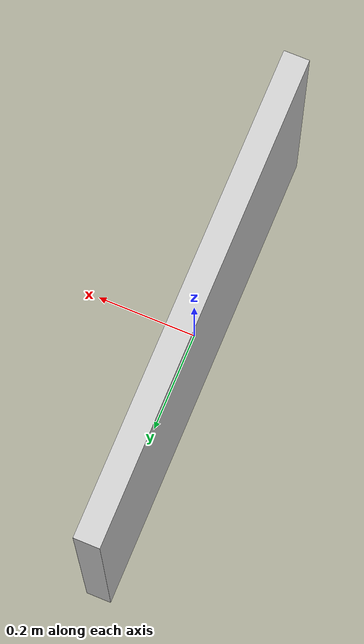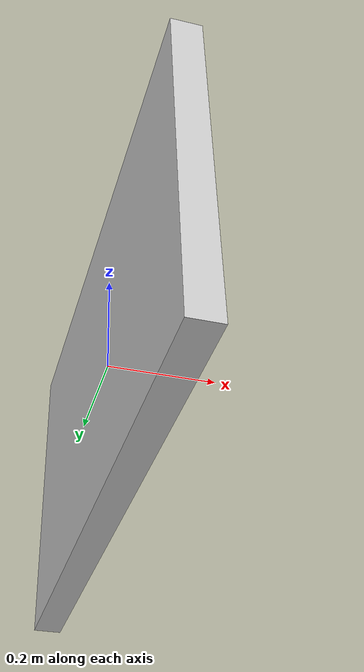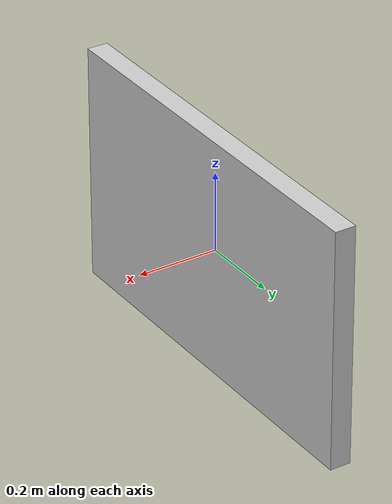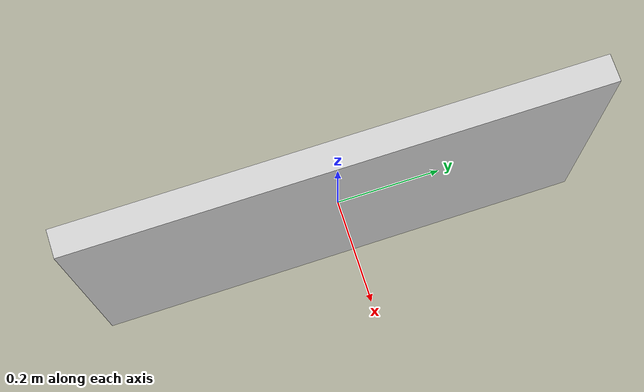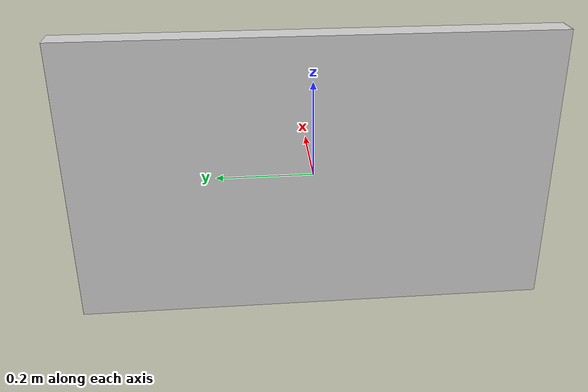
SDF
<?xml version="1.0" ?>
<sdf version="1.4">
  <model name='block1'>
    <pose>0 0 0 0 0 0</pose>
    <static>1</static>
    <link name='link'>
      <gravity>0</gravity>
      <collision name='collision'>
        <geometry>
          <mesh>
            <uri>model://tomato/meshes/block.dae</uri>
          </mesh>
        </geometry>
        <max_contacts>10</max_contacts>
        <surface>
          <contact>
            <ode/>
          </contact>
          <bounce/>
          <friction>
            <ode/>
          </friction>
        </surface>
      </collision>
      <visual name='block1'>
        <geometry>
          <mesh>
            <uri>model://tomato/meshes/block.dae</uri>
          </mesh>
        </geometry>
        <!-- set color of block as grey and not impact by light -->
        <material>
          <color>0.5 0.5 0.5 1</color>
        </material>
      </visual>
      <velocity_decay>
        <linear>0</linear>
        <angular>0</angular>
      </velocity_decay>
      <self_collide>0</self_collide>
      <kinematic>0</kinematic>
      <gravity>1</gravity>
    </link>
  </model>
</sdf>
